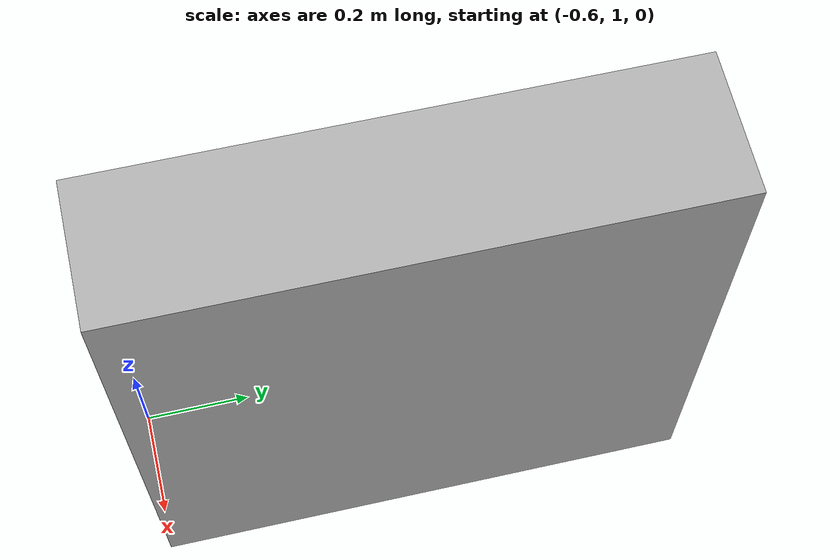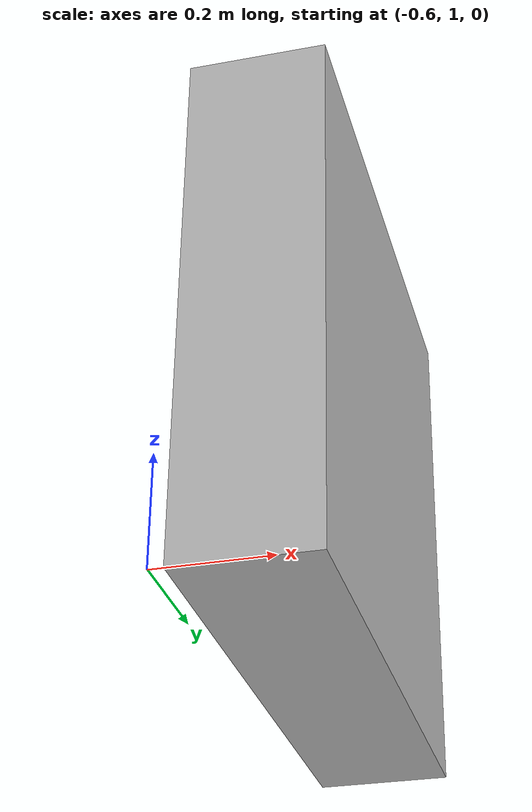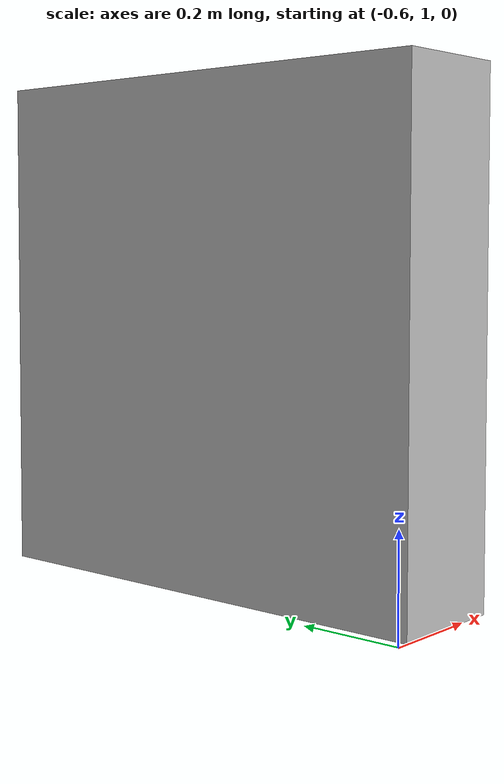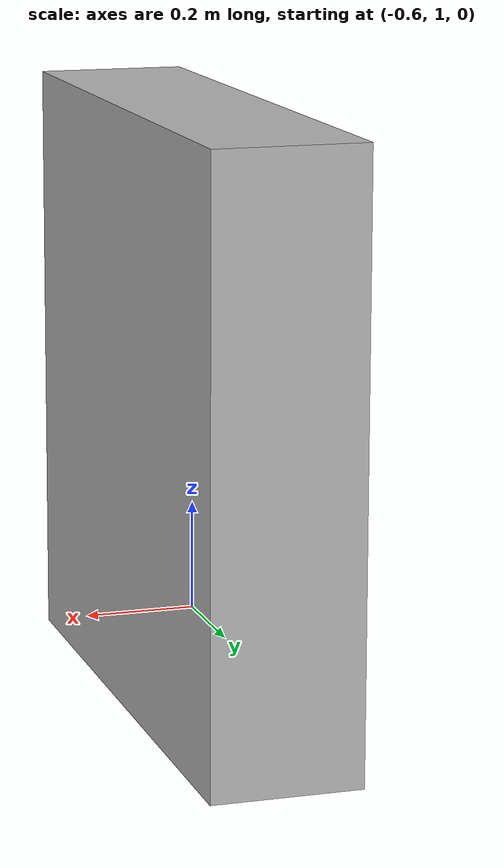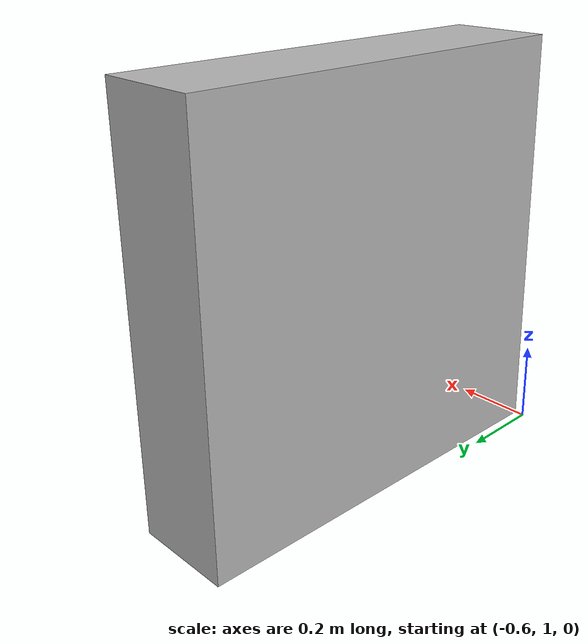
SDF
<?xml version='1.0'?>
<sdf version="1.5">
  <model name="apriltag_36h11_id1">
    <pose> 0 1.5 0.5 0 0 0</pose>
    <static>true</static>
    <link name="link">
      <collision name="collision">
	<pose>-0.5 0 0 0 0 0</pose>
        <geometry>
          <box>
            <size>1 1 1</size>
          </box>
        </geometry>
      </collision>
      <visual name='visual'>
        <pose>-0.5 0 0 0 0 0</pose>
        <geometry>
            <mesh>
              <uri>model://apriltag_36h11_id1/meshes/apriltag_36h11_id1.dae</uri>
            </mesh>
        </geometry>
      </visual>
    </link>
  </model>
</sdf>
